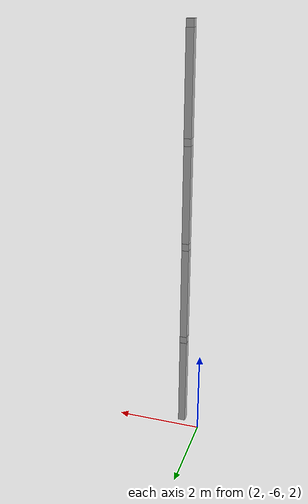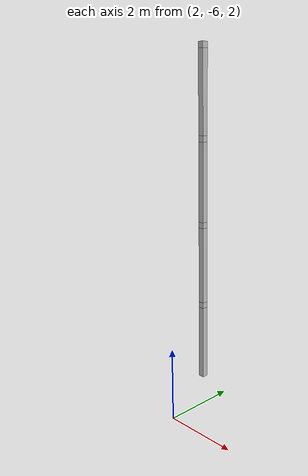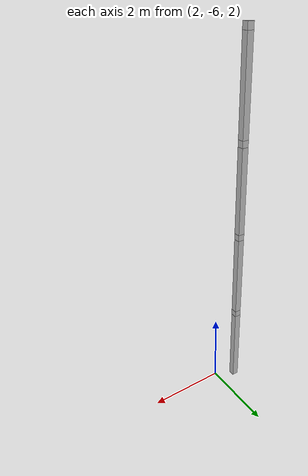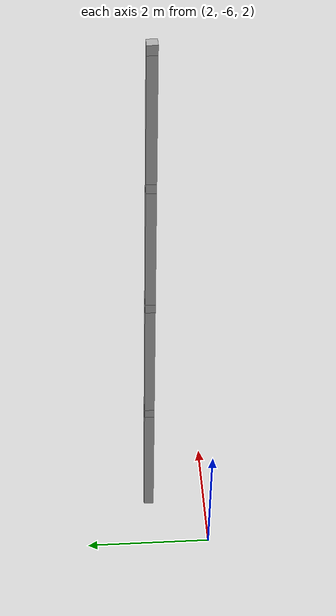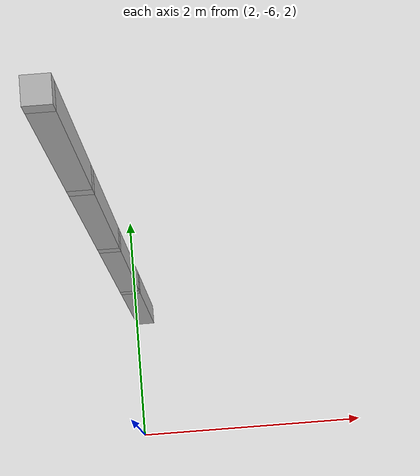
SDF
<sdf version="1.7">
 <world name="default">
  <model name="orthogonal_747_2.000.15_TS">
   <static>1</static>
   <link name="u_link_3_0_4">
    <inertial>
     <mass>1</mass>
     <inertia>
      <ixx>0.166667</ixx>
      <ixy>0</ixy>
      <ixz>0</ixz>
      <iyy>0.166667</iyy>
      <iyz>0</iyz>
      <izz>0.166667</izz>
     </inertia>
    </inertial>
    <pose>8.6 0 7.525 0 -0 0</pose>
    <visual name="visual_0">
     <laser_retro>2682</laser_retro>
     <geometry><box><size>0.15 1e-06 0.15</size></box></geometry>
     <material>
      <script><name>Gazebo/Grey</name><uri>file://media/materials/scripts/gazebo.material</uri></script>
      <shader type="pixel"><normal_map>__default__</normal_map></shader>
      <ambient>0.678 0.498 0.659 1</ambient>
      <diffuse>0.7 0.7 0.7 1</diffuse>
      <specular>0.01 0.01 0.01 1</specular>
      <emissive>0 0 0 1</emissive>
     </material>
     <pose>0 -0.075 0 0 -0 0</pose>
     <transparency>1</transparency>
    </visual>
    <visual name="visual_1">
     <laser_retro>2683</laser_retro>
     <geometry><box><size>0.15 1e-06 0.15</size></box></geometry>
     <material>
      <script><name>Gazebo/Grey</name><uri>file://media/materials/scripts/gazebo.material</uri></script>
      <shader type="pixel"><normal_map>__default__</normal_map></shader>
      <ambient>0.447 0.624 0.812 1</ambient>
      <diffuse>0.7 0.7 0.7 1</diffuse>
      <specular>0.01 0.01 0.01 1</specular>
      <emissive>0 0 0 1</emissive>
     </material>
     <pose>0 0.075 0 0 -0 0</pose>
     <transparency>1</transparency>
    </visual>
    <visual name="visual_2">
     <laser_retro>2684</laser_retro>
     <geometry><box><size>0.15 0.15 1e-06</size></box></geometry>
     <material>
      <script><name>Gazebo/Grey</name><uri>file://media/materials/scripts/gazebo.material</uri></script>
      <shader type="pixel"><normal_map>__default__</normal_map></shader>
      <ambient>0.988 0.686 0.243 1</ambient>
      <diffuse>0.7 0.7 0.7 1</diffuse>
      <specular>0.01 0.01 0.01 1</specular>
      <emissive>0 0 0 1</emissive>
     </material>
     <pose>0 0 -0.075 0 -0 0</pose>
     <transparency>1</transparency>
    </visual>
    <visual name="visual_3">
     <laser_retro>2685</laser_retro>
     <geometry><box><size>1e-06 0.15 0.15</size></box></geometry>
     <material>
      <script><name>Gazebo/Grey</name><uri>file://media/materials/scripts/gazebo.material</uri></script>
      <shader type="pixel"><normal_map>__default__</normal_map></shader>
      <ambient>0.988 0.914 0.31 1</ambient>
      <diffuse>0.7 0.7 0.7 1</diffuse>
      <specular>0.01 0.01 0.01 1</specular>
      <emissive>0 0 0 1</emissive>
     </material>
     <pose>0.075 0 0 0 -0 0</pose>
     <transparency>1</transparency>
    </visual>
    <visual name="visual_4">
     <laser_retro>2686</laser_retro>
     <geometry><box><size>0.15 0.15 1e-06</size></box></geometry>
     <material>
      <script><name>Gazebo/Grey</name><uri>file://media/materials/scripts/gazebo.material</uri></script>
      <shader type="pixel"><normal_map>__default__</normal_map></shader>
      <ambient>0.937 0.161 0.161 1</ambient>
      <diffuse>0.7 0.7 0.7 1</diffuse>
      <specular>0.01 0.01 0.01 1</specular>
      <emissive>0 0 0 1</emissive>
     </material>
     <pose>0 0 0.075 0 -0 0</pose>
     <transparency>1</transparency>
    </visual>
    <visual name="visual_5">
     <laser_retro>2687</laser_retro>
     <geometry><box><size>1e-06 0.15 0.15</size></box></geometry>
     <material>
      <script><name>Gazebo/Grey</name><uri>file://media/materials/scripts/gazebo.material</uri></script>
      <shader type="pixel"><normal_map>__default__</normal_map></shader>
      <ambient>0.541 0.886 0.204 1</ambient>
      <diffuse>0.7 0.7 0.7 1</diffuse>
      <specular>0.01 0.01 0.01 1</specular>
      <emissive>0 0 0 1</emissive>
     </material>
     <pose>-0.075 0 0 0 -0 0</pose>
     <transparency>1</transparency>
    </visual>
    <visual name="visual_texture">
     <geometry><box><size>0.149985 0.149985 0.149985</size></box></geometry>
     <material>
      <script>
       <uri>model://BASE_MODELS/simple_block_v2_textured/materials/scripts</uri>
       <uri>model://BASE_MODELS/simple_block_v2_textured/materials/textures</uri>
       <name>metal</name>
      </script>
     </material>
     <laser_retro>2688</laser_retro>
    </visual>
    <collision name="collision">
     <geometry><box><size>0.15 0.15 0.15</size></box></geometry>
     <surface>
      <friction>
       <ode><mu>1</mu><mu2>1</mu2><fdir1>0 0 0</fdir1><slip1>0</slip1><slip2>0</slip2></ode>
       <torsional>
        <coefficient>1</coefficient>
        <patch_radius>0</patch_radius>
        <surface_radius>0</surface_radius>
        <use_patch_radius>1</use_patch_radius>
        <ode><slip>0</slip></ode>
       </torsional>
      </friction>
      <bounce><restitution_coefficient>0</restitution_coefficient><threshold>1e+06</threshold></bounce>
      <contact>
       <collide_without_contact>0</collide_without_contact>
       <collide_without_contact_bitmask>1</collide_without_contact_bitmask>
       <collide_bitmask>1</collide_bitmask>
       <ode>
        <soft_cfm>0</soft_cfm>
        <soft_erp>0.2</soft_erp>
        <kp>1e+13</kp>
        <kd>1</kd>
        <max_vel>0.01</max_vel>
        <min_depth>0</min_depth>
       </ode>
       <bullet>
        <split_impulse>1</split_impulse>
        <split_impulse_penetration_threshold>-0.01</split_impulse_penetration_threshold>
        <soft_cfm>0</soft_cfm>
        <soft_erp>0.2</soft_erp>
        <kp>1e+13</kp>
        <kd>1</kd>
       </bullet>
      </contact>
     </surface>
    </collision>
   </link>
   <link name="z_link_3_0_4">
    <inertial>
     <mass>1</mass>
     <inertia>
      <ixx>0.166667</ixx>
      <ixy>0</ixy>
      <ixz>0</ixz>
      <iyy>0.166667</iyy>
      <iyz>0</iyz>
      <izz>0.166667</izz>
     </inertia>
    </inertial>
    <pose>8.6 0 6.45 0 -0 0</pose>
    <visual name="visual_0">
     <laser_retro>2689</laser_retro>
     <geometry><box><size>0.15 1e-06 2</size></box></geometry>
     <material>
      <script><name>Gazebo/Grey</name><uri>file://media/materials/scripts/gazebo.material</uri></script>
      <shader type="pixel"><normal_map>__default__</normal_map></shader>
      <ambient>0.678 0.498 0.659 1</ambient>
      <diffuse>0.7 0.7 0.7 1</diffuse>
      <specular>0.01 0.01 0.01 1</specular>
      <emissive>0 0 0 1</emissive>
     </material>
     <pose>0 -0.075 0 0 -0 0</pose>
     <transparency>1</transparency>
    </visual>
    <visual name="visual_1">
     <laser_retro>2690</laser_retro>
     <geometry><box><size>0.15 1e-06 2</size></box></geometry>
     <material>
      <script><name>Gazebo/Grey</name><uri>file://media/materials/scripts/gazebo.material</uri></script>
      <shader type="pixel"><normal_map>__default__</normal_map></shader>
      <ambient>0.447 0.624 0.812 1</ambient>
      <diffuse>0.7 0.7 0.7 1</diffuse>
      <specular>0.01 0.01 0.01 1</specular>
      <emissive>0 0 0 1</emissive>
     </material>
     <pose>0 0.075 0 0 -0 0</pose>
     <transparency>1</transparency>
    </visual>
    <visual name="visual_2">
     <laser_retro>2691</laser_retro>
     <geometry><box><size>0.15 0.15 1e-06</size></box></geometry>
     <material>
      <script><name>Gazebo/Grey</name><uri>file://media/materials/scripts/gazebo.material</uri></script>
      <shader type="pixel"><normal_map>__default__</normal_map></shader>
      <ambient>0.988 0.686 0.243 1</ambient>
      <diffuse>0.7 0.7 0.7 1</diffuse>
      <specular>0.01 0.01 0.01 1</specular>
      <emissive>0 0 0 1</emissive>
     </material>
     <pose>0 0 -1 0 -0 0</pose>
     <transparency>1</transparency>
    </visual>
    <visual name="visual_3">
     <laser_retro>2692</laser_retro>
     <geometry><box><size>1e-06 0.15 2</size></box></geometry>
     <material>
      <script><name>Gazebo/Grey</name><uri>file://media/materials/scripts/gazebo.material</uri></script>
      <shader type="pixel"><normal_map>__default__</normal_map></shader>
      <ambient>0.988 0.914 0.31 1</ambient>
      <diffuse>0.7 0.7 0.7 1</diffuse>
      <specular>0.01 0.01 0.01 1</specular>
      <emissive>0 0 0 1</emissive>
     </material>
     <pose>0.075 0 0 0 -0 0</pose>
     <transparency>1</transparency>
    </visual>
    <visual name="visual_4">
     <laser_retro>2693</laser_retro>
     <geometry><box><size>0.15 0.15 1e-06</size></box></geometry>
     <material>
      <script><name>Gazebo/Grey</name><uri>file://media/materials/scripts/gazebo.material</uri></script>
      <shader type="pixel"><normal_map>__default__</normal_map></shader>
      <ambient>0.937 0.161 0.161 1</ambient>
      <diffuse>0.7 0.7 0.7 1</diffuse>
      <specular>0.01 0.01 0.01 1</specular>
      <emissive>0 0 0 1</emissive>
     </material>
     <pose>0 0 1 0 -0 0</pose>
     <transparency>1</transparency>
    </visual>
    <visual name="visual_5">
     <laser_retro>2694</laser_retro>
     <geometry><box><size>1e-06 0.15 2</size></box></geometry>
     <material>
      <script><name>Gazebo/Grey</name><uri>file://media/materials/scripts/gazebo.material</uri></script>
      <shader type="pixel"><normal_map>__default__</normal_map></shader>
      <ambient>0.541 0.886 0.204 1</ambient>
      <diffuse>0.7 0.7 0.7 1</diffuse>
      <specular>0.01 0.01 0.01 1</specular>
      <emissive>0 0 0 1</emissive>
     </material>
     <pose>-0.075 0 0 0 -0 0</pose>
     <transparency>1</transparency>
    </visual>
    <visual name="visual_texture">
     <geometry><box><size>0.149985 0.149985 1.9998</size></box></geometry>
     <material>
      <script>
       <uri>model://BASE_MODELS/simple_block_v2_textured/materials/scripts</uri>
       <uri>model://BASE_MODELS/simple_block_v2_textured/materials/textures</uri>
       <name>metal</name>
      </script>
     </material>
     <laser_retro>2695</laser_retro>
    </visual>
    <collision name="collision">
     <geometry><box><size>0.15 0.15 2</size></box></geometry>
     <surface>
      <friction>
       <ode><mu>1</mu><mu2>1</mu2><fdir1>0 0 0</fdir1><slip1>0</slip1><slip2>0</slip2></ode>
       <torsional>
        <coefficient>1</coefficient>
        <patch_radius>0</patch_radius>
        <surface_radius>0</surface_radius>
        <use_patch_radius>1</use_patch_radius>
        <ode><slip>0</slip></ode>
       </torsional>
      </friction>
      <bounce><restitution_coefficient>0</restitution_coefficient><threshold>1e+06</threshold></bounce>
      <contact>
       <collide_without_contact>0</collide_without_contact>
       <collide_without_contact_bitmask>1</collide_without_contact_bitmask>
       <collide_bitmask>1</collide_bitmask>
       <ode>
        <soft_cfm>0</soft_cfm>
        <soft_erp>0.2</soft_erp>
        <kp>1e+13</kp>
        <kd>1</kd>
        <max_vel>0.01</max_vel>
        <min_depth>0</min_depth>
       </ode>
       <bullet>
        <split_impulse>1</split_impulse>
        <split_impulse_penetration_threshold>-0.01</split_impulse_penetration_threshold>
        <soft_cfm>0</soft_cfm>
        <soft_erp>0.2</soft_erp>
        <kp>1e+13</kp>
        <kd>1</kd>
       </bullet>
      </contact>
     </surface>
    </collision>
   </link>
   <link name="u_link_4_0_4">
    <inertial>
     <mass>1</mass>
     <inertia>
      <ixx>0.166667</ixx>
      <ixy>0</ixy>
      <ixz>0</ixz>
      <iyy>0.166667</iyy>
      <iyz>0</iyz>
      <izz>0.166667</izz>
     </inertia>
    </inertial>
    <pose>8.6 0 9.675 0 -0 0</pose>
    <visual name="visual_0">
     <laser_retro>3585</laser_retro>
     <geometry><box><size>0.15 1e-06 0.15</size></box></geometry>
     <material>
      <script><name>Gazebo/Grey</name><uri>file://media/materials/scripts/gazebo.material</uri></script>
      <shader type="pixel"><normal_map>__default__</normal_map></shader>
      <ambient>0.678 0.498 0.659 1</ambient>
      <diffuse>0.7 0.7 0.7 1</diffuse>
      <specular>0.01 0.01 0.01 1</specular>
      <emissive>0 0 0 1</emissive>
     </material>
     <pose>0 -0.075 0 0 -0 0</pose>
     <transparency>1</transparency>
    </visual>
    <visual name="visual_1">
     <laser_retro>3586</laser_retro>
     <geometry><box><size>0.15 1e-06 0.15</size></box></geometry>
     <material>
      <script><name>Gazebo/Grey</name><uri>file://media/materials/scripts/gazebo.material</uri></script>
      <shader type="pixel"><normal_map>__default__</normal_map></shader>
      <ambient>0.447 0.624 0.812 1</ambient>
      <diffuse>0.7 0.7 0.7 1</diffuse>
      <specular>0.01 0.01 0.01 1</specular>
      <emissive>0 0 0 1</emissive>
     </material>
     <pose>0 0.075 0 0 -0 0</pose>
     <transparency>1</transparency>
    </visual>
    <visual name="visual_2">
     <laser_retro>3587</laser_retro>
     <geometry><box><size>0.15 0.15 1e-06</size></box></geometry>
     <material>
      <script><name>Gazebo/Grey</name><uri>file://media/materials/scripts/gazebo.material</uri></script>
      <shader type="pixel"><normal_map>__default__</normal_map></shader>
      <ambient>0.988 0.686 0.243 1</ambient>
      <diffuse>0.7 0.7 0.7 1</diffuse>
      <specular>0.01 0.01 0.01 1</specular>
      <emissive>0 0 0 1</emissive>
     </material>
     <pose>0 0 -0.075 0 -0 0</pose>
     <transparency>1</transparency>
    </visual>
    <visual name="visual_3">
     <laser_retro>3588</laser_retro>
     <geometry><box><size>1e-06 0.15 0.15</size></box></geometry>
     <material>
      <script><name>Gazebo/Grey</name><uri>file://media/materials/scripts/gazebo.material</uri></script>
      <shader type="pixel"><normal_map>__default__</normal_map></shader>
      <ambient>0.988 0.914 0.31 1</ambient>
      <diffuse>0.7 0.7 0.7 1</diffuse>
      <specular>0.01 0.01 0.01 1</specular>
      <emissive>0 0 0 1</emissive>
     </material>
     <pose>0.075 0 0 0 -0 0</pose>
     <transparency>1</transparency>
    </visual>
    <visual name="visual_4">
     <laser_retro>3589</laser_retro>
     <geometry><box><size>0.15 0.15 1e-06</size></box></geometry>
     <material>
      <script><name>Gazebo/Grey</name><uri>file://media/materials/scripts/gazebo.material</uri></script>
      <shader type="pixel"><normal_map>__default__</normal_map></shader>
      <ambient>0.937 0.161 0.161 1</ambient>
      <diffuse>0.7 0.7 0.7 1</diffuse>
      <specular>0.01 0.01 0.01 1</specular>
      <emissive>0 0 0 1</emissive>
     </material>
     <pose>0 0 0.075 0 -0 0</pose>
     <transparency>1</transparency>
    </visual>
    <visual name="visual_5">
     <laser_retro>3590</laser_retro>
     <geometry><box><size>1e-06 0.15 0.15</size></box></geometry>
     <material>
      <script><name>Gazebo/Grey</name><uri>file://media/materials/scripts/gazebo.material</uri></script>
      <shader type="pixel"><normal_map>__default__</normal_map></shader>
      <ambient>0.541 0.886 0.204 1</ambient>
      <diffuse>0.7 0.7 0.7 1</diffuse>
      <specular>0.01 0.01 0.01 1</specular>
      <emissive>0 0 0 1</emissive>
     </material>
     <pose>-0.075 0 0 0 -0 0</pose>
     <transparency>1</transparency>
    </visual>
    <visual name="visual_texture">
     <geometry><box><size>0.149985 0.149985 0.149985</size></box></geometry>
     <material>
      <script>
       <uri>model://BASE_MODELS/simple_block_v2_textured/materials/scripts</uri>
       <uri>model://BASE_MODELS/simple_block_v2_textured/materials/textures</uri>
       <name>metal</name>
      </script>
     </material>
     <laser_retro>3591</laser_retro>
    </visual>
    <collision name="collision">
     <geometry><box><size>0.15 0.15 0.15</size></box></geometry>
     <surface>
      <friction>
       <ode><mu>1</mu><mu2>1</mu2><fdir1>0 0 0</fdir1><slip1>0</slip1><slip2>0</slip2></ode>
       <torsional>
        <coefficient>1</coefficient>
        <patch_radius>0</patch_radius>
        <surface_radius>0</surface_radius>
        <use_patch_radius>1</use_patch_radius>
        <ode><slip>0</slip></ode>
       </torsional>
      </friction>
      <bounce><restitution_coefficient>0</restitution_coefficient><threshold>1e+06</threshold></bounce>
      <contact>
       <collide_without_contact>0</collide_without_contact>
       <collide_without_contact_bitmask>1</collide_without_contact_bitmask>
       <collide_bitmask>1</collide_bitmask>
       <ode>
        <soft_cfm>0</soft_cfm>
        <soft_erp>0.2</soft_erp>
        <kp>1e+13</kp>
        <kd>1</kd>
        <max_vel>0.01</max_vel>
        <min_depth>0</min_depth>
       </ode>
       <bullet>
        <split_impulse>1</split_impulse>
        <split_impulse_penetration_threshold>-0.01</split_impulse_penetration_threshold>
        <soft_cfm>0</soft_cfm>
        <soft_erp>0.2</soft_erp>
        <kp>1e+13</kp>
        <kd>1</kd>
       </bullet>
      </contact>
     </surface>
    </collision>
   </link>
   <link name="z_link_4_0_4">
    <inertial>
     <mass>1</mass>
     <inertia>
      <ixx>0.166667</ixx>
      <ixy>0</ixy>
      <ixz>0</ixz>
      <iyy>0.166667</iyy>
      <iyz>0</iyz>
      <izz>0.166667</izz>
     </inertia>
    </inertial>
    <pose>8.6 0 8.6 0 -0 0</pose>
    <visual name="visual_0">
     <laser_retro>3592</laser_retro>
     <geometry><box><size>0.15 1e-06 2</size></box></geometry>
     <material>
      <script><name>Gazebo/Grey</name><uri>file://media/materials/scripts/gazebo.material</uri></script>
      <shader type="pixel"><normal_map>__default__</normal_map></shader>
      <ambient>0.678 0.498 0.659 1</ambient>
      <diffuse>0.7 0.7 0.7 1</diffuse>
      <specular>0.01 0.01 0.01 1</specular>
      <emissive>0 0 0 1</emissive>
     </material>
     <pose>0 -0.075 0 0 -0 0</pose>
     <transparency>1</transparency>
    </visual>
    <visual name="visual_1">
     <laser_retro>3593</laser_retro>
     <geometry><box><size>0.15 1e-06 2</size></box></geometry>
     <material>
      <script><name>Gazebo/Grey</name><uri>file://media/materials/scripts/gazebo.material</uri></script>
      <shader type="pixel"><normal_map>__default__</normal_map></shader>
      <ambient>0.447 0.624 0.812 1</ambient>
      <diffuse>0.7 0.7 0.7 1</diffuse>
      <specular>0.01 0.01 0.01 1</specular>
      <emissive>0 0 0 1</emissive>
     </material>
     <pose>0 0.075 0 0 -0 0</pose>
     <transparency>1</transparency>
    </visual>
    <visual name="visual_2">
     <laser_retro>3594</laser_retro>
     <geometry><box><size>0.15 0.15 1e-06</size></box></geometry>
     <material>
      <script><name>Gazebo/Grey</name><uri>file://media/materials/scripts/gazebo.material</uri></script>
      <shader type="pixel"><normal_map>__default__</normal_map></shader>
      <ambient>0.988 0.686 0.243 1</ambient>
      <diffuse>0.7 0.7 0.7 1</diffuse>
      <specular>0.01 0.01 0.01 1</specular>
      <emissive>0 0 0 1</emissive>
     </material>
     <pose>0 0 -1 0 -0 0</pose>
     <transparency>1</transparency>
    </visual>
    <visual name="visual_3">
     <laser_retro>3595</laser_retro>
     <geometry><box><size>1e-06 0.15 2</size></box></geometry>
     <material>
      <script><name>Gazebo/Grey</name><uri>file://media/materials/scripts/gazebo.material</uri></script>
      <shader type="pixel"><normal_map>__default__</normal_map></shader>
      <ambient>0.988 0.914 0.31 1</ambient>
      <diffuse>0.7 0.7 0.7 1</diffuse>
      <specular>0.01 0.01 0.01 1</specular>
      <emissive>0 0 0 1</emissive>
     </material>
     <pose>0.075 0 0 0 -0 0</pose>
     <transparency>1</transparency>
    </visual>
    <visual name="visual_4">
     <laser_retro>3596</laser_retro>
     <geometry><box><size>0.15 0.15 1e-06</size></box></geometry>
     <material>
      <script><name>Gazebo/Grey</name><uri>file://media/materials/scripts/gazebo.material</uri></script>
      <shader type="pixel"><normal_map>__default__</normal_map></shader>
      <ambient>0.937 0.161 0.161 1</ambient>
      <diffuse>0.7 0.7 0.7 1</diffuse>
      <specular>0.01 0.01 0.01 1</specular>
      <emissive>0 0 0 1</emissive>
     </material>
     <pose>0 0 1 0 -0 0</pose>
     <transparency>1</transparency>
    </visual>
    <visual name="visual_5">
     <laser_retro>3597</laser_retro>
     <geometry><box><size>1e-06 0.15 2</size></box></geometry>
     <material>
      <script><name>Gazebo/Grey</name><uri>file://media/materials/scripts/gazebo.material</uri></script>
      <shader type="pixel"><normal_map>__default__</normal_map></shader>
      <ambient>0.541 0.886 0.204 1</ambient>
      <diffuse>0.7 0.7 0.7 1</diffuse>
      <specular>0.01 0.01 0.01 1</specular>
      <emissive>0 0 0 1</emissive>
     </material>
     <pose>-0.075 0 0 0 -0 0</pose>
     <transparency>1</transparency>
    </visual>
    <visual name="visual_texture">
     <geometry><box><size>0.149985 0.149985 1.9998</size></box></geometry>
     <material>
      <script>
       <uri>model://BASE_MODELS/simple_block_v2_textured/materials/scripts</uri>
       <uri>model://BASE_MODELS/simple_block_v2_textured/materials/textures</uri>
       <name>metal</name>
      </script>
     </material>
     <laser_retro>3598</laser_retro>
    </visual>
    <collision name="collision">
     <geometry><box><size>0.15 0.15 2</size></box></geometry>
     <surface>
      <friction>
       <ode><mu>1</mu><mu2>1</mu2><fdir1>0 0 0</fdir1><slip1>0</slip1><slip2>0</slip2></ode>
       <torsional>
        <coefficient>1</coefficient>
        <patch_radius>0</patch_radius>
        <surface_radius>0</surface_radius>
        <use_patch_radius>1</use_patch_radius>
        <ode><slip>0</slip></ode>
       </torsional>
      </friction>
      <bounce><restitution_coefficient>0</restitution_coefficient><threshold>1e+06</threshold></bounce>
      <contact>
       <collide_without_contact>0</collide_without_contact>
       <collide_without_contact_bitmask>1</collide_without_contact_bitmask>
       <collide_bitmask>1</collide_bitmask>
       <ode>
        <soft_cfm>0</soft_cfm>
        <soft_erp>0.2</soft_erp>
        <kp>1e+13</kp>
        <kd>1</kd>
        <max_vel>0.01</max_vel>
        <min_depth>0</min_depth>
       </ode>
       <bullet>
        <split_impulse>1</split_impulse>
        <split_impulse_penetration_threshold>-0.01</split_impulse_penetration_threshold>
        <soft_cfm>0</soft_cfm>
        <soft_erp>0.2</soft_erp>
        <kp>1e+13</kp>
        <kd>1</kd>
       </bullet>
      </contact>
     </surface>
    </collision>
   </link>
   <link name="u_link_5_0_4">
    <inertial>
     <mass>1</mass>
     <inertia>
      <ixx>0.166667</ixx>
      <ixy>0</ixy>
      <ixz>0</ixz>
      <iyy>0.166667</iyy>
      <iyz>0</iyz>
      <izz>0.166667</izz>
     </inertia>
    </inertial>
    <pose>8.6 0 11.825 0 -0 0</pose>
    <visual name="visual_0">
     <laser_retro>4488</laser_retro>
     <geometry><box><size>0.15 1e-06 0.15</size></box></geometry>
     <material>
      <script><name>Gazebo/Grey</name><uri>file://media/materials/scripts/gazebo.material</uri></script>
      <shader type="pixel"><normal_map>__default__</normal_map></shader>
      <ambient>0.678 0.498 0.659 1</ambient>
      <diffuse>0.7 0.7 0.7 1</diffuse>
      <specular>0.01 0.01 0.01 1</specular>
      <emissive>0 0 0 1</emissive>
     </material>
     <pose>0 -0.075 0 0 -0 0</pose>
     <transparency>1</transparency>
    </visual>
    <visual name="visual_1">
     <laser_retro>4489</laser_retro>
     <geometry><box><size>0.15 1e-06 0.15</size></box></geometry>
     <material>
      <script><name>Gazebo/Grey</name><uri>file://media/materials/scripts/gazebo.material</uri></script>
      <shader type="pixel"><normal_map>__default__</normal_map></shader>
      <ambient>0.447 0.624 0.812 1</ambient>
      <diffuse>0.7 0.7 0.7 1</diffuse>
      <specular>0.01 0.01 0.01 1</specular>
      <emissive>0 0 0 1</emissive>
     </material>
     <pose>0 0.075 0 0 -0 0</pose>
     <transparency>1</transparency>
    </visual>
    <visual name="visual_2">
     <laser_retro>4490</laser_retro>
     <geometry><box><size>0.15 0.15 1e-06</size></box></geometry>
     <material>
      <script><name>Gazebo/Grey</name><uri>file://media/materials/scripts/gazebo.material</uri></script>
      <shader type="pixel"><normal_map>__default__</normal_map></shader>
      <ambient>0.988 0.686 0.243 1</ambient>
      <diffuse>0.7 0.7 0.7 1</diffuse>
      <specular>0.01 0.01 0.01 1</specular>
      <emissive>0 0 0 1</emissive>
     </material>
     <pose>0 0 -0.075 0 -0 0</pose>
     <transparency>1</transparency>
    </visual>
    <visual name="visual_3">
     <laser_retro>4491</laser_retro>
     <geometry><box><size>1e-06 0.15 0.15</size></box></geometry>
     <material>
      <script><name>Gazebo/Grey</name><uri>file://media/materials/scripts/gazebo.material</uri></script>
      <shader type="pixel"><normal_map>__default__</normal_map></shader>
      <ambient>0.988 0.914 0.31 1</ambient>
      <diffuse>0.7 0.7 0.7 1</diffuse>
      <specular>0.01 0.01 0.01 1</specular>
      <emissive>0 0 0 1</emissive>
     </material>
     <pose>0.075 0 0 0 -0 0</pose>
     <transparency>1</transparency>
    </visual>
    <visual name="visual_4">
     <laser_retro>4492</laser_retro>
     <geometry><box><size>0.15 0.15 1e-06</size></box></geometry>
     <material>
      <script><name>Gazebo/Grey</name><uri>file://media/materials/scripts/gazebo.material</uri></script>
      <shader type="pixel"><normal_map>__default__</normal_map></shader>
      <ambient>0.937 0.161 0.161 1</ambient>
      <diffuse>0.7 0.7 0.7 1</diffuse>
      <specular>0.01 0.01 0.01 1</specular>
      <emissive>0 0 0 1</emissive>
     </material>
     <pose>0 0 0.075 0 -0 0</pose>
     <transparency>1</transparency>
    </visual>
    <visual name="visual_5">
     <laser_retro>4493</laser_retro>
     <geometry><box><size>1e-06 0.15 0.15</size></box></geometry>
     <material>
      <script><name>Gazebo/Grey</name><uri>file://media/materials/scripts/gazebo.material</uri></script>
      <shader type="pixel"><normal_map>__default__</normal_map></shader>
      <ambient>0.541 0.886 0.204 1</ambient>
      <diffuse>0.7 0.7 0.7 1</diffuse>
      <specular>0.01 0.01 0.01 1</specular>
      <emissive>0 0 0 1</emissive>
     </material>
     <pose>-0.075 0 0 0 -0 0</pose>
     <transparency>1</transparency>
    </visual>
    <visual name="visual_texture">
     <geometry><box><size>0.149985 0.149985 0.149985</size></box></geometry>
     <material>
      <script>
       <uri>model://BASE_MODELS/simple_block_v2_textured/materials/scripts</uri>
       <uri>model://BASE_MODELS/simple_block_v2_textured/materials/textures</uri>
       <name>metal</name>
      </script>
     </material>
     <laser_retro>4494</laser_retro>
    </visual>
    <collision name="collision">
     <geometry><box><size>0.15 0.15 0.15</size></box></geometry>
     <surface>
      <friction>
       <ode><mu>1</mu><mu2>1</mu2><fdir1>0 0 0</fdir1><slip1>0</slip1><slip2>0</slip2></ode>
       <torsional>
        <coefficient>1</coefficient>
        <patch_radius>0</patch_radius>
        <surface_radius>0</surface_radius>
        <use_patch_radius>1</use_patch_radius>
        <ode><slip>0</slip></ode>
       </torsional>
      </friction>
      <bounce><restitution_coefficient>0</restitution_coefficient><threshold>1e+06</threshold></bounce>
      <contact>
       <collide_without_contact>0</collide_without_contact>
       <collide_without_contact_bitmask>1</collide_without_contact_bitmask>
       <collide_bitmask>1</collide_bitmask>
       <ode>
        <soft_cfm>0</soft_cfm>
        <soft_erp>0.2</soft_erp>
        <kp>1e+13</kp>
        <kd>1</kd>
        <max_vel>0.01</max_vel>
        <min_depth>0</min_depth>
       </ode>
       <bullet>
        <split_impulse>1</split_impulse>
        <split_impulse_penetration_threshold>-0.01</split_impulse_penetration_threshold>
        <soft_cfm>0</soft_cfm>
        <soft_erp>0.2</soft_erp>
        <kp>1e+13</kp>
        <kd>1</kd>
       </bullet>
      </contact>
     </surface>
    </collision>
   </link>
   <link name="z_link_5_0_4">
    <inertial>
     <mass>1</mass>
     <inertia>
      <ixx>0.166667</ixx>
      <ixy>0</ixy>
      <ixz>0</ixz>
      <iyy>0.166667</iyy>
      <iyz>0</iyz>
      <izz>0.166667</izz>
     </inertia>
    </inertial>
    <pose>8.6 0 10.75 0 -0 0</pose>
    <visual name="visual_0">
     <laser_retro>4495</laser_retro>
     <geometry><box><size>0.15 1e-06 2</size></box></geometry>
     <material>
      <script><name>Gazebo/Grey</name><uri>file://media/materials/scripts/gazebo.material</uri></script>
      <shader type="pixel"><normal_map>__default__</normal_map></shader>
      <ambient>0.678 0.498 0.659 1</ambient>
      <diffuse>0.7 0.7 0.7 1</diffuse>
      <specular>0.01 0.01 0.01 1</specular>
      <emissive>0 0 0 1</emissive>
     </material>
     <pose>0 -0.075 0 0 -0 0</pose>
     <transparency>1</transparency>
    </visual>
    <visual name="visual_1">
     <laser_retro>4496</laser_retro>
     <geometry><box><size>0.15 1e-06 2</size></box></geometry>
     <material>
      <script><name>Gazebo/Grey</name><uri>file://media/materials/scripts/gazebo.material</uri></script>
      <shader type="pixel"><normal_map>__default__</normal_map></shader>
      <ambient>0.447 0.624 0.812 1</ambient>
      <diffuse>0.7 0.7 0.7 1</diffuse>
      <specular>0.01 0.01 0.01 1</specular>
      <emissive>0 0 0 1</emissive>
     </material>
     <pose>0 0.075 0 0 -0 0</pose>
     <transparency>1</transparency>
    </visual>
    <visual name="visual_2">
     <laser_retro>4497</laser_retro>
     <geometry><box><size>0.15 0.15 1e-06</size></box></geometry>
     <material>
      <script><name>Gazebo/Grey</name><uri>file://media/materials/scripts/gazebo.material</uri></script>
      <shader type="pixel"><normal_map>__default__</normal_map></shader>
      <ambient>0.988 0.686 0.243 1</ambient>
      <diffuse>0.7 0.7 0.7 1</diffuse>
      <specular>0.01 0.01 0.01 1</specular>
      <emissive>0 0 0 1</emissive>
     </material>
     <pose>0 0 -1 0 -0 0</pose>
     <transparency>1</transparency>
    </visual>
    <visual name="visual_3">
     <laser_retro>4498</laser_retro>
     <geometry><box><size>1e-06 0.15 2</size></box></geometry>
     <material>
      <script><name>Gazebo/Grey</name><uri>file://media/materials/scripts/gazebo.material</uri></script>
      <shader type="pixel"><normal_map>__default__</normal_map></shader>
      <ambient>0.988 0.914 0.31 1</ambient>
      <diffuse>0.7 0.7 0.7 1</diffuse>
      <specular>0.01 0.01 0.01 1</specular>
      <emissive>0 0 0 1</emissive>
     </material>
     <pose>0.075 0 0 0 -0 0</pose>
     <transparency>1</transparency>
    </visual>
    <visual name="visual_4">
     <laser_retro>4499</laser_retro>
     <geometry><box><size>0.15 0.15 1e-06</size></box></geometry>
     <material>
      <script><name>Gazebo/Grey</name><uri>file://media/materials/scripts/gazebo.material</uri></script>
      <shader type="pixel"><normal_map>__default__</normal_map></shader>
      <ambient>0.937 0.161 0.161 1</ambient>
      <diffuse>0.7 0.7 0.7 1</diffuse>
      <specular>0.01 0.01 0.01 1</specular>
      <emissive>0 0 0 1</emissive>
     </material>
     <pose>0 0 1 0 -0 0</pose>
     <transparency>1</transparency>
    </visual>
    <visual name="visual_5">
     <laser_retro>4500</laser_retro>
     <geometry><box><size>1e-06 0.15 2</size></box></geometry>
     <material>
      <script><name>Gazebo/Grey</name><uri>file://media/materials/scripts/gazebo.material</uri></script>
      <shader type="pixel"><normal_map>__default__</normal_map></shader>
      <ambient>0.541 0.886 0.204 1</ambient>
      <diffuse>0.7 0.7 0.7 1</diffuse>
      <specular>0.01 0.01 0.01 1</specular>
      <emissive>0 0 0 1</emissive>
     </material>
     <pose>-0.075 0 0 0 -0 0</pose>
     <transparency>1</transparency>
    </visual>
    <visual name="visual_texture">
     <geometry><box><size>0.149985 0.149985 1.9998</size></box></geometry>
     <material>
      <script>
       <uri>model://BASE_MODELS/simple_block_v2_textured/materials/scripts</uri>
       <uri>model://BASE_MODELS/simple_block_v2_textured/materials/textures</uri>
       <name>metal</name>
      </script>
     </material>
     <laser_retro>4501</laser_retro>
    </visual>
    <collision name="collision">
     <geometry><box><size>0.15 0.15 2</size></box></geometry>
     <surface>
      <friction>
       <ode><mu>1</mu><mu2>1</mu2><fdir1>0 0 0</fdir1><slip1>0</slip1><slip2>0</slip2></ode>
       <torsional>
        <coefficient>1</coefficient>
        <patch_radius>0</patch_radius>
        <surface_radius>0</surface_radius>
        <use_patch_radius>1</use_patch_radius>
        <ode><slip>0</slip></ode>
       </torsional>
      </friction>
      <bounce><restitution_coefficient>0</restitution_coefficient><threshold>1e+06</threshold></bounce>
      <contact>
       <collide_without_contact>0</collide_without_contact>
       <collide_without_contact_bitmask>1</collide_without_contact_bitmask>
       <collide_bitmask>1</collide_bitmask>
       <ode>
        <soft_cfm>0</soft_cfm>
        <soft_erp>0.2</soft_erp>
        <kp>1e+13</kp>
        <kd>1</kd>
        <max_vel>0.01</max_vel>
        <min_depth>0</min_depth>
       </ode>
       <bullet>
        <split_impulse>1</split_impulse>
        <split_impulse_penetration_threshold>-0.01</split_impulse_penetration_threshold>
        <soft_cfm>0</soft_cfm>
        <soft_erp>0.2</soft_erp>
        <kp>1e+13</kp>
        <kd>1</kd>
       </bullet>
      </contact>
     </surface>
    </collision>
   </link>
   <link name="u_link_6_0_4">
    <inertial>
     <mass>1</mass>
     <inertia>
      <ixx>0.166667</ixx>
      <ixy>0</ixy>
      <ixz>0</ixz>
      <iyy>0.166667</iyy>
      <iyz>0</iyz>
      <izz>0.166667</izz>
     </inertia>
    </inertial>
    <pose>8.6 0 13.975 0 -0 0</pose>
    <visual name="visual_0">
     <laser_retro>5391</laser_retro>
     <geometry><box><size>0.15 1e-06 0.15</size></box></geometry>
     <material>
      <script><name>Gazebo/Grey</name><uri>file://media/materials/scripts/gazebo.material</uri></script>
      <shader type="pixel"><normal_map>__default__</normal_map></shader>
      <ambient>0.678 0.498 0.659 1</ambient>
      <diffuse>0.7 0.7 0.7 1</diffuse>
      <specular>0.01 0.01 0.01 1</specular>
      <emissive>0 0 0 1</emissive>
     </material>
     <pose>0 -0.075 0 0 -0 0</pose>
     <transparency>1</transparency>
    </visual>
    <visual name="visual_1">
     <laser_retro>5392</laser_retro>
     <geometry><box><size>0.15 1e-06 0.15</size></box></geometry>
     <material>
      <script><name>Gazebo/Grey</name><uri>file://media/materials/scripts/gazebo.material</uri></script>
      <shader type="pixel"><normal_map>__default__</normal_map></shader>
      <ambient>0.447 0.624 0.812 1</ambient>
      <diffuse>0.7 0.7 0.7 1</diffuse>
      <specular>0.01 0.01 0.01 1</specular>
      <emissive>0 0 0 1</emissive>
     </material>
     <pose>0 0.075 0 0 -0 0</pose>
     <transparency>1</transparency>
    </visual>
    <visual name="visual_2">
     <laser_retro>5393</laser_retro>
     <geometry><box><size>0.15 0.15 1e-06</size></box></geometry>
     <material>
      <script><name>Gazebo/Grey</name><uri>file://media/materials/scripts/gazebo.material</uri></script>
      <shader type="pixel"><normal_map>__default__</normal_map></shader>
      <ambient>0.988 0.686 0.243 1</ambient>
      <diffuse>0.7 0.7 0.7 1</diffuse>
      <specular>0.01 0.01 0.01 1</specular>
      <emissive>0 0 0 1</emissive>
     </material>
     <pose>0 0 -0.075 0 -0 0</pose>
     <transparency>1</transparency>
    </visual>
    <visual name="visual_3">
     <laser_retro>5394</laser_retro>
     <geometry><box><size>1e-06 0.15 0.15</size></box></geometry>
     <material>
      <script><name>Gazebo/Grey</name><uri>file://media/materials/scripts/gazebo.material</uri></script>
      <shader type="pixel"><normal_map>__default__</normal_map></shader>
      <ambient>0.988 0.914 0.31 1</ambient>
      <diffuse>0.7 0.7 0.7 1</diffuse>
      <specular>0.01 0.01 0.01 1</specular>
      <emissive>0 0 0 1</emissive>
     </material>
     <pose>0.075 0 0 0 -0 0</pose>
     <transparency>1</transparency>
    </visual>
    <visual name="visual_4">
     <laser_retro>5395</laser_retro>
     <geometry><box><size>0.15 0.15 1e-06</size></box></geometry>
     <material>
      <script><name>Gazebo/Grey</name><uri>file://media/materials/scripts/gazebo.material</uri></script>
      <shader type="pixel"><normal_map>__default__</normal_map></shader>
      <ambient>0.937 0.161 0.161 1</ambient>
      <diffuse>0.7 0.7 0.7 1</diffuse>
      <specular>0.01 0.01 0.01 1</specular>
      <emissive>0 0 0 1</emissive>
     </material>
     <pose>0 0 0.075 0 -0 0</pose>
     <transparency>1</transparency>
    </visual>
    <visual name="visual_5">
     <laser_retro>5396</laser_retro>
     <geometry><box><size>1e-06 0.15 0.15</size></box></geometry>
     <material>
      <script><name>Gazebo/Grey</name><uri>file://media/materials/scripts/gazebo.material</uri></script>
      <shader type="pixel"><normal_map>__default__</normal_map></shader>
      <ambient>0.541 0.886 0.204 1</ambient>
      <diffuse>0.7 0.7 0.7 1</diffuse>
      <specular>0.01 0.01 0.01 1</specular>
      <emissive>0 0 0 1</emissive>
     </material>
     <pose>-0.075 0 0 0 -0 0</pose>
     <transparency>1</transparency>
    </visual>
    <visual name="visual_texture">
     <geometry><box><size>0.149985 0.149985 0.149985</size></box></geometry>
     <material>
      <script>
       <uri>model://BASE_MODELS/simple_block_v2_textured/materials/scripts</uri>
       <uri>model://BASE_MODELS/simple_block_v2_textured/materials/textures</uri>
       <name>metal</name>
      </script>
     </material>
     <laser_retro>5397</laser_retro>
    </visual>
    <collision name="collision">
     <geometry><box><size>0.15 0.15 0.15</size></box></geometry>
     <surface>
      <friction>
       <ode><mu>1</mu><mu2>1</mu2><fdir1>0 0 0</fdir1><slip1>0</slip1><slip2>0</slip2></ode>
       <torsional>
        <coefficient>1</coefficient>
        <patch_radius>0</patch_radius>
        <surface_radius>0</surface_radius>
        <use_patch_radius>1</use_patch_radius>
        <ode><slip>0</slip></ode>
       </torsional>
      </friction>
      <bounce><restitution_coefficient>0</restitution_coefficient><threshold>1e+06</threshold></bounce>
      <contact>
       <collide_without_contact>0</collide_without_contact>
       <collide_without_contact_bitmask>1</collide_without_contact_bitmask>
       <collide_bitmask>1</collide_bitmask>
       <ode>
        <soft_cfm>0</soft_cfm>
        <soft_erp>0.2</soft_erp>
        <kp>1e+13</kp>
        <kd>1</kd>
        <max_vel>0.01</max_vel>
        <min_depth>0</min_depth>
       </ode>
       <bullet>
        <split_impulse>1</split_impulse>
        <split_impulse_penetration_threshold>-0.01</split_impulse_penetration_threshold>
        <soft_cfm>0</soft_cfm>
        <soft_erp>0.2</soft_erp>
        <kp>1e+13</kp>
        <kd>1</kd>
       </bullet>
      </contact>
     </surface>
    </collision>
   </link>
   <link name="z_link_6_0_4">
    <inertial>
     <mass>1</mass>
     <inertia>
      <ixx>0.166667</ixx>
      <ixy>0</ixy>
      <ixz>0</ixz>
      <iyy>0.166667</iyy>
      <iyz>0</iyz>
      <izz>0.166667</izz>
     </inertia>
    </inertial>
    <pose>8.6 0 12.9 0 -0 0</pose>
    <visual name="visual_0">
     <laser_retro>5398</laser_retro>
     <geometry><box><size>0.15 1e-06 2</size></box></geometry>
     <material>
      <script><name>Gazebo/Grey</name><uri>file://media/materials/scripts/gazebo.material</uri></script>
      <shader type="pixel"><normal_map>__default__</normal_map></shader>
      <ambient>0.678 0.498 0.659 1</ambient>
      <diffuse>0.7 0.7 0.7 1</diffuse>
      <specular>0.01 0.01 0.01 1</specular>
      <emissive>0 0 0 1</emissive>
     </material>
     <pose>0 -0.075 0 0 -0 0</pose>
     <transparency>1</transparency>
    </visual>
    <visual name="visual_1">
     <laser_retro>5399</laser_retro>
     <geometry><box><size>0.15 1e-06 2</size></box></geometry>
     <material>
      <script><name>Gazebo/Grey</name><uri>file://media/materials/scripts/gazebo.material</uri></script>
      <shader type="pixel"><normal_map>__default__</normal_map></shader>
      <ambient>0.447 0.624 0.812 1</ambient>
      <diffuse>0.7 0.7 0.7 1</diffuse>
      <specular>0.01 0.01 0.01 1</specular>
      <emissive>0 0 0 1</emissive>
     </material>
     <pose>0 0.075 0 0 -0 0</pose>
     <transparency>1</transparency>
    </visual>
    <visual name="visual_2">
     <laser_retro>5400</laser_retro>
     <geometry><box><size>0.15 0.15 1e-06</size></box></geometry>
     <material>
      <script><name>Gazebo/Grey</name><uri>file://media/materials/scripts/gazebo.material</uri></script>
      <shader type="pixel"><normal_map>__default__</normal_map></shader>
      <ambient>0.988 0.686 0.243 1</ambient>
      <diffuse>0.7 0.7 0.7 1</diffuse>
      <specular>0.01 0.01 0.01 1</specular>
      <emissive>0 0 0 1</emissive>
     </material>
     <pose>0 0 -1 0 -0 0</pose>
     <transparency>1</transparency>
    </visual>
    <visual name="visual_3">
     <laser_retro>5401</laser_retro>
     <geometry><box><size>1e-06 0.15 2</size></box></geometry>
     <material>
      <script><name>Gazebo/Grey</name><uri>file://media/materials/scripts/gazebo.material</uri></script>
      <shader type="pixel"><normal_map>__default__</normal_map></shader>
      <ambient>0.988 0.914 0.31 1</ambient>
      <diffuse>0.7 0.7 0.7 1</diffuse>
      <specular>0.01 0.01 0.01 1</specular>
      <emissive>0 0 0 1</emissive>
     </material>
     <pose>0.075 0 0 0 -0 0</pose>
     <transparency>1</transparency>
    </visual>
    <visual name="visual_4">
     <laser_retro>5402</laser_retro>
     <geometry><box><size>0.15 0.15 1e-06</size></box></geometry>
     <material>
      <script><name>Gazebo/Grey</name><uri>file://media/materials/scripts/gazebo.material</uri></script>
      <shader type="pixel"><normal_map>__default__</normal_map></shader>
      <ambient>0.937 0.161 0.161 1</ambient>
      <diffuse>0.7 0.7 0.7 1</diffuse>
      <specular>0.01 0.01 0.01 1</specular>
      <emissive>0 0 0 1</emissive>
     </material>
     <pose>0 0 1 0 -0 0</pose>
     <transparency>1</transparency>
    </visual>
    <visual name="visual_5">
     <laser_retro>5403</laser_retro>
     <geometry><box><size>1e-06 0.15 2</size></box></geometry>
     <material>
      <script><name>Gazebo/Grey</name><uri>file://media/materials/scripts/gazebo.material</uri></script>
      <shader type="pixel"><normal_map>__default__</normal_map></shader>
      <ambient>0.541 0.886 0.204 1</ambient>
      <diffuse>0.7 0.7 0.7 1</diffuse>
      <specular>0.01 0.01 0.01 1</specular>
      <emissive>0 0 0 1</emissive>
     </material>
     <pose>-0.075 0 0 0 -0 0</pose>
     <transparency>1</transparency>
    </visual>
    <visual name="visual_texture">
     <geometry><box><size>0.149985 0.149985 1.9998</size></box></geometry>
     <material>
      <script>
       <uri>model://BASE_MODELS/simple_block_v2_textured/materials/scripts</uri>
       <uri>model://BASE_MODELS/simple_block_v2_textured/materials/textures</uri>
       <name>metal</name>
      </script>
     </material>
     <laser_retro>5404</laser_retro>
    </visual>
    <collision name="collision">
     <geometry><box><size>0.15 0.15 2</size></box></geometry>
     <surface>
      <friction>
       <ode><mu>1</mu><mu2>1</mu2><fdir1>0 0 0</fdir1><slip1>0</slip1><slip2>0</slip2></ode>
       <torsional>
        <coefficient>1</coefficient>
        <patch_radius>0</patch_radius>
        <surface_radius>0</surface_radius>
        <use_patch_radius>1</use_patch_radius>
        <ode><slip>0</slip></ode>
       </torsional>
      </friction>
      <bounce><restitution_coefficient>0</restitution_coefficient><threshold>1e+06</threshold></bounce>
      <contact>
       <collide_without_contact>0</collide_without_contact>
       <collide_without_contact_bitmask>1</collide_without_contact_bitmask>
       <collide_bitmask>1</collide_bitmask>
       <ode>
        <soft_cfm>0</soft_cfm>
        <soft_erp>0.2</soft_erp>
        <kp>1e+13</kp>
        <kd>1</kd>
        <max_vel>0.01</max_vel>
        <min_depth>0</min_depth>
       </ode>
       <bullet>
        <split_impulse>1</split_impulse>
        <split_impulse_penetration_threshold>-0.01</split_impulse_penetration_threshold>
        <soft_cfm>0</soft_cfm>
        <soft_erp>0.2</soft_erp>
        <kp>1e+13</kp>
        <kd>1</kd>
       </bullet>
      </contact>
     </surface>
    </collision>
   </link>
   <pose>-6.47624 -5 -2.5 0 -0 0</pose>
  </model>
 </world>
</sdf>
